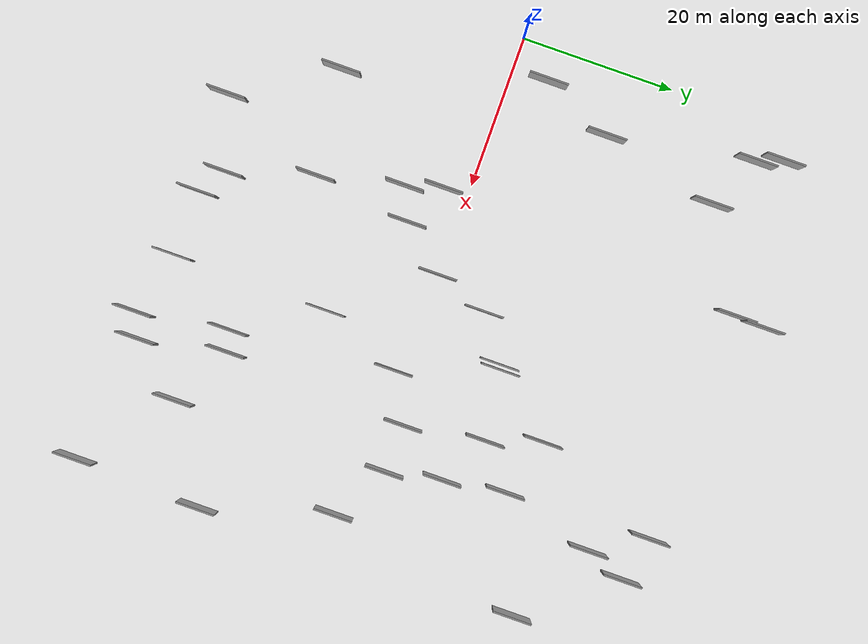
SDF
<sdf version="1.6">
 <world name="default">
  <scene>
   <sky><clouds><speed>12</speed></clouds></sky>
   <ambient>0.4 0.4 0.4 1</ambient>
   <background>0.7 0.7 0.7 1</background>
   <shadows>1</shadows>
  </scene>
  <gravity>0 0 -9.8066</gravity>
  <magnetic_field>6e-06 2.3e-05 -4.2e-05</magnetic_field>
  <physics default="0" name="default_physics" type="ode">
   <ode>
    <solver>
     <type>quick</type>
     <iters>10</iters>
     <sor>1.0</sor>
     <use_dynamic_moi_rescaling>0</use_dynamic_moi_rescaling>
    </solver>
    <constraints>
     <cfm>0</cfm>
     <erp>0.2</erp>
     <contact_max_correcting_vel>100</contact_max_correcting_vel>
     <contact_surface_layer>0.001</contact_surface_layer>
    </constraints>
   </ode>
   <max_step_size>0.004</max_step_size>
   <real_time_factor>1</real_time_factor>
   <real_time_update_rate>250</real_time_update_rate>
  </physics>
  <light name="sun" type="directional">
   <pose>0 0 10 0 0 0</pose>
   <diffuse>0.8 0.8 0.8 1</diffuse>
   <specular>0.2 0.2 0.2 1</specular>
   <attenuation>
    <range>1000</range>
    <constant>0.9</constant>
    <linear>0.01</linear>
    <quadratic>0.001</quadratic>
   </attenuation>
   <direction>-0.5 0.1 -0.9</direction>
  </light>
  <model name="grey_wall_1">
   <static>1</static>
   <pose>57.5017 1.6066 5.0 0.000000 0.000000 1.570796</pose>
   <link name="link">
    <pose>0 0 2.50 0 0 0</pose>
    <collision name="collision"><geometry><box><size>5.00 0.2 5.00</size></box></geometry></collision>
    <visual name="visual">
     <cast_shadows>0</cast_shadows>
     <geometry><box><size>5.00 0.2 5.00</size></box></geometry>
     <material>
      <script>
       <uri>model://grey_wall/materials/scripts</uri>
       <uri>model://grey_wall/materials/textures</uri>
       <name>vrc/grey_wall</name>
      </script>
     </material>
    </visual>
   </link>
  </model>
  <model name="grey_wall_2">
   <static>1</static>
   <pose>56.0781 8.6717 5.0 0.000000 0.000000 1.570796</pose>
   <link name="link">
    <pose>0 0 2.50 0 0 0</pose>
    <collision name="collision"><geometry><box><size>5.00 0.2 5.00</size></box></geometry></collision>
    <visual name="visual">
     <cast_shadows>0</cast_shadows>
     <geometry><box><size>5.00 0.2 5.00</size></box></geometry>
     <material>
      <script>
       <uri>model://grey_wall/materials/scripts</uri>
       <uri>model://grey_wall/materials/textures</uri>
       <name>vrc/grey_wall</name>
      </script>
     </material>
    </visual>
   </link>
  </model>
  <model name="grey_wall_3">
   <static>1</static>
   <pose>54.3988 35.3021 5.0 0.000000 0.000000 1.570796</pose>
   <link name="link">
    <pose>0 0 2.50 0 0 0</pose>
    <collision name="collision"><geometry><box><size>5.00 0.2 5.00</size></box></geometry></collision>
    <visual name="visual">
     <cast_shadows>0</cast_shadows>
     <geometry><box><size>5.00 0.2 5.00</size></box></geometry>
     <material>
      <script>
       <uri>model://grey_wall/materials/scripts</uri>
       <uri>model://grey_wall/materials/textures</uri>
       <name>vrc/grey_wall</name>
      </script>
     </material>
    </visual>
   </link>
  </model>
  <model name="grey_wall_4">
   <static>1</static>
   <pose>47.4897 18.8995 5.0 0.000000 0.000000 1.570796</pose>
   <link name="link">
    <pose>0 0 2.50 0 0 0</pose>
    <collision name="collision"><geometry><box><size>5.00 0.2 5.00</size></box></geometry></collision>
    <visual name="visual">
     <cast_shadows>0</cast_shadows>
     <geometry><box><size>5.00 0.2 5.00</size></box></geometry>
     <material>
      <script>
       <uri>model://grey_wall/materials/scripts</uri>
       <uri>model://grey_wall/materials/textures</uri>
       <name>vrc/grey_wall</name>
      </script>
     </material>
    </visual>
   </link>
  </model>
  <model name="grey_wall_5">
   <static>1</static>
   <pose>19.8289 -32.2792 5.0 0.000000 0.000000 1.570796</pose>
   <link name="link">
    <pose>0 0 2.50 0 0 0</pose>
    <collision name="collision"><geometry><box><size>5.00 0.2 5.00</size></box></geometry></collision>
    <visual name="visual">
     <cast_shadows>0</cast_shadows>
     <geometry><box><size>5.00 0.2 5.00</size></box></geometry>
     <material>
      <script>
       <uri>model://grey_wall/materials/scripts</uri>
       <uri>model://grey_wall/materials/textures</uri>
       <name>vrc/grey_wall</name>
      </script>
     </material>
    </visual>
   </link>
  </model>
  <model name="grey_wall_6">
   <static>1</static>
   <pose>54.9334 16.5593 5.0 0.000000 0.000000 1.570796</pose>
   <link name="link">
    <pose>0 0 2.50 0 0 0</pose>
    <collision name="collision"><geometry><box><size>5.00 0.2 5.00</size></box></geometry></collision>
    <visual name="visual">
     <cast_shadows>0</cast_shadows>
     <geometry><box><size>5.00 0.2 5.00</size></box></geometry>
     <material>
      <script>
       <uri>model://grey_wall/materials/scripts</uri>
       <uri>model://grey_wall/materials/textures</uri>
       <name>vrc/grey_wall</name>
      </script>
     </material>
    </visual>
   </link>
  </model>
  <model name="grey_wall_7">
   <static>1</static>
   <pose>50.0308 -21.8087 5.0 0.000000 0.000000 1.570796</pose>
   <link name="link">
    <pose>0 0 2.50 0 0 0</pose>
    <collision name="collision"><geometry><box><size>5.00 0.2 5.00</size></box></geometry></collision>
    <visual name="visual">
     <cast_shadows>0</cast_shadows>
     <geometry><box><size>5.00 0.2 5.00</size></box></geometry>
     <material>
      <script>
       <uri>model://grey_wall/materials/scripts</uri>
       <uri>model://grey_wall/materials/textures</uri>
       <name>vrc/grey_wall</name>
      </script>
     </material>
    </visual>
   </link>
  </model>
  <model name="grey_wall_8">
   <static>1</static>
   <pose>64.5347 -2.5638 5.0 0.000000 0.000000 1.570796</pose>
   <link name="link">
    <pose>0 0 2.50 0 0 0</pose>
    <collision name="collision"><geometry><box><size>5.00 0.2 5.00</size></box></geometry></collision>
    <visual name="visual">
     <cast_shadows>0</cast_shadows>
     <geometry><box><size>5.00 0.2 5.00</size></box></geometry>
     <material>
      <script>
       <uri>model://grey_wall/materials/scripts</uri>
       <uri>model://grey_wall/materials/textures</uri>
       <name>vrc/grey_wall</name>
      </script>
     </material>
    </visual>
   </link>
  </model>
  <model name="grey_wall_9">
   <static>1</static>
   <pose>40.8226 10.9444 5.0 0.000000 0.000000 1.570796</pose>
   <link name="link">
    <pose>0 0 2.50 0 0 0</pose>
    <collision name="collision"><geometry><box><size>5.00 0.2 5.00</size></box></geometry></collision>
    <visual name="visual">
     <cast_shadows>0</cast_shadows>
     <geometry><box><size>5.00 0.2 5.00</size></box></geometry>
     <material>
      <script>
       <uri>model://grey_wall/materials/scripts</uri>
       <uri>model://grey_wall/materials/textures</uri>
       <name>vrc/grey_wall</name>
      </script>
     </material>
    </visual>
   </link>
  </model>
  <model name="grey_wall_10">
   <static>1</static>
   <pose>49.0571 -34.2443 5.0 0.000000 0.000000 1.570796</pose>
   <link name="link">
    <pose>0 0 2.50 0 0 0</pose>
    <collision name="collision"><geometry><box><size>5.00 0.2 5.00</size></box></geometry></collision>
    <visual name="visual">
     <cast_shadows>0</cast_shadows>
     <geometry><box><size>5.00 0.2 5.00</size></box></geometry>
     <material>
      <script>
       <uri>model://grey_wall/materials/scripts</uri>
       <uri>model://grey_wall/materials/textures</uri>
       <name>vrc/grey_wall</name>
      </script>
     </material>
    </visual>
   </link>
  </model>
  <model name="grey_wall_11">
   <static>1</static>
   <pose>68.6575 -35.0618 5.0 0.000000 0.000000 1.570796</pose>
   <link name="link">
    <pose>0 0 2.50 0 0 0</pose>
    <collision name="collision"><geometry><box><size>5.00 0.2 5.00</size></box></geometry></collision>
    <visual name="visual">
     <cast_shadows>0</cast_shadows>
     <geometry><box><size>5.00 0.2 5.00</size></box></geometry>
     <material>
      <script>
       <uri>model://grey_wall/materials/scripts</uri>
       <uri>model://grey_wall/materials/textures</uri>
       <name>vrc/grey_wall</name>
      </script>
     </material>
    </visual>
   </link>
  </model>
  <model name="grey_wall_12">
   <static>1</static>
   <pose>21.8648 -3.1618 5.0 0.000000 0.000000 1.570796</pose>
   <link name="link">
    <pose>0 0 2.50 0 0 0</pose>
    <collision name="collision"><geometry><box><size>5.00 0.2 5.00</size></box></geometry></collision>
    <visual name="visual">
     <cast_shadows>0</cast_shadows>
     <geometry><box><size>5.00 0.2 5.00</size></box></geometry>
     <material>
      <script>
       <uri>model://grey_wall/materials/scripts</uri>
       <uri>model://grey_wall/materials/textures</uri>
       <name>vrc/grey_wall</name>
      </script>
     </material>
    </visual>
   </link>
  </model>
  <model name="grey_wall_13">
   <static>1</static>
   <pose>57.7972 -25.9357 5.0 0.000000 0.000000 1.570796</pose>
   <link name="link">
    <pose>0 0 2.50 0 0 0</pose>
    <collision name="collision"><geometry><box><size>5.00 0.2 5.00</size></box></geometry></collision>
    <visual name="visual">
     <cast_shadows>0</cast_shadows>
     <geometry><box><size>5.00 0.2 5.00</size></box></geometry>
     <material>
      <script>
       <uri>model://grey_wall/materials/scripts</uri>
       <uri>model://grey_wall/materials/textures</uri>
       <name>vrc/grey_wall</name>
      </script>
     </material>
    </visual>
   </link>
  </model>
  <model name="grey_wall_14">
   <static>1</static>
   <pose>4.7463 35.4220 5.0 0.000000 0.000000 1.570796</pose>
   <link name="link">
    <pose>0 0 2.50 0 0 0</pose>
    <collision name="collision"><geometry><box><size>5.00 0.2 5.00</size></box></geometry></collision>
    <visual name="visual">
     <cast_shadows>0</cast_shadows>
     <geometry><box><size>5.00 0.2 5.00</size></box></geometry>
     <material>
      <script>
       <uri>model://grey_wall/materials/scripts</uri>
       <uri>model://grey_wall/materials/textures</uri>
       <name>vrc/grey_wall</name>
      </script>
     </material>
    </visual>
   </link>
  </model>
  <model name="grey_wall_15">
   <static>1</static>
   <pose>29.0141 -29.4306 5.0 0.000000 0.000000 1.570796</pose>
   <link name="link">
    <pose>0 0 2.50 0 0 0</pose>
    <collision name="collision"><geometry><box><size>5.00 0.2 5.00</size></box></geometry></collision>
    <visual name="visual">
     <cast_shadows>0</cast_shadows>
     <geometry><box><size>5.00 0.2 5.00</size></box></geometry>
     <material>
      <script>
       <uri>model://grey_wall/materials/scripts</uri>
       <uri>model://grey_wall/materials/textures</uri>
       <name>vrc/grey_wall</name>
      </script>
     </material>
    </visual>
   </link>
  </model>
  <model name="grey_wall_16">
   <static>1</static>
   <pose>58.2957 28.6387 5.0 0.000000 0.000000 1.570796</pose>
   <link name="link">
    <pose>0 0 2.50 0 0 0</pose>
    <collision name="collision"><geometry><box><size>5.00 0.2 5.00</size></box></geometry></collision>
    <visual name="visual">
     <cast_shadows>0</cast_shadows>
     <geometry><box><size>5.00 0.2 5.00</size></box></geometry>
     <material>
      <script>
       <uri>model://grey_wall/materials/scripts</uri>
       <uri>model://grey_wall/materials/textures</uri>
       <name>vrc/grey_wall</name>
      </script>
     </material>
    </visual>
   </link>
  </model>
  <model name="grey_wall_17">
   <static>1</static>
   <pose>49.7387 12.1019 5.0 0.000000 0.000000 1.570796</pose>
   <link name="link">
    <pose>0 0 2.50 0 0 0</pose>
    <collision name="collision"><geometry><box><size>5.00 0.2 5.00</size></box></geometry></collision>
    <visual name="visual">
     <cast_shadows>0</cast_shadows>
     <geometry><box><size>5.00 0.2 5.00</size></box></geometry>
     <material>
      <script>
       <uri>model://grey_wall/materials/scripts</uri>
       <uri>model://grey_wall/materials/textures</uri>
       <name>vrc/grey_wall</name>
      </script>
     </material>
    </visual>
   </link>
  </model>
  <model name="grey_wall_18">
   <static>1</static>
   <pose>32.2640 -0.2797 5.0 0.000000 0.000000 1.570796</pose>
   <link name="link">
    <pose>0 0 2.50 0 0 0</pose>
    <collision name="collision"><geometry><box><size>5.00 0.2 5.00</size></box></geometry></collision>
    <visual name="visual">
     <cast_shadows>0</cast_shadows>
     <geometry><box><size>5.00 0.2 5.00</size></box></geometry>
     <material>
      <script>
       <uri>model://grey_wall/materials/scripts</uri>
       <uri>model://grey_wall/materials/textures</uri>
       <name>vrc/grey_wall</name>
      </script>
     </material>
    </visual>
   </link>
  </model>
  <model name="grey_wall_19">
   <static>1</static>
   <pose>34.6848 6.6577 5.0 0.000000 0.000000 1.570796</pose>
   <link name="link">
    <pose>0 0 2.50 0 0 0</pose>
    <collision name="collision"><geometry><box><size>5.00 0.2 5.00</size></box></geometry></collision>
    <visual name="visual">
     <cast_shadows>0</cast_shadows>
     <geometry><box><size>5.00 0.2 5.00</size></box></geometry>
     <material>
      <script>
       <uri>model://grey_wall/materials/scripts</uri>
       <uri>model://grey_wall/materials/textures</uri>
       <name>vrc/grey_wall</name>
      </script>
     </material>
    </visual>
   </link>
  </model>
  <model name="grey_wall_20">
   <static>1</static>
   <pose>51.3331 1.8923 5.0 0.000000 0.000000 1.570796</pose>
   <link name="link">
    <pose>0 0 2.50 0 0 0</pose>
    <collision name="collision"><geometry><box><size>5.00 0.2 5.00</size></box></geometry></collision>
    <visual name="visual">
     <cast_shadows>0</cast_shadows>
     <geometry><box><size>5.00 0.2 5.00</size></box></geometry>
     <material>
      <script>
       <uri>model://grey_wall/materials/scripts</uri>
       <uri>model://grey_wall/materials/textures</uri>
       <name>vrc/grey_wall</name>
      </script>
     </material>
    </visual>
   </link>
  </model>
  <model name="grey_wall_21">
   <static>1</static>
   <pose>23.2405 -7.7976 5.0 0.000000 0.000000 1.570796</pose>
   <link name="link">
    <pose>0 0 2.50 0 0 0</pose>
    <collision name="collision"><geometry><box><size>5.00 0.2 5.00</size></box></geometry></collision>
    <visual name="visual">
     <cast_shadows>0</cast_shadows>
     <geometry><box><size>5.00 0.2 5.00</size></box></geometry>
     <material>
      <script>
       <uri>model://grey_wall/materials/scripts</uri>
       <uri>model://grey_wall/materials/textures</uri>
       <name>vrc/grey_wall</name>
      </script>
     </material>
    </visual>
   </link>
  </model>
  <model name="grey_wall_22">
   <static>1</static>
   <pose>25.7096 -18.5956 5.0 0.000000 0.000000 1.570796</pose>
   <link name="link">
    <pose>0 0 2.50 0 0 0</pose>
    <collision name="collision"><geometry><box><size>5.00 0.2 5.00</size></box></geometry></collision>
    <visual name="visual">
     <cast_shadows>0</cast_shadows>
     <geometry><box><size>5.00 0.2 5.00</size></box></geometry>
     <material>
      <script>
       <uri>model://grey_wall/materials/scripts</uri>
       <uri>model://grey_wall/materials/textures</uri>
       <name>vrc/grey_wall</name>
      </script>
     </material>
    </visual>
   </link>
  </model>
  <model name="grey_wall_23">
   <static>1</static>
   <pose>32.4021 -31.7320 5.0 0.000000 0.000000 1.570796</pose>
   <link name="link">
    <pose>0 0 2.50 0 0 0</pose>
    <collision name="collision"><geometry><box><size>5.00 0.2 5.00</size></box></geometry></collision>
    <visual name="visual">
     <cast_shadows>0</cast_shadows>
     <geometry><box><size>5.00 0.2 5.00</size></box></geometry>
     <material>
      <script>
       <uri>model://grey_wall/materials/scripts</uri>
       <uri>model://grey_wall/materials/textures</uri>
       <name>vrc/grey_wall</name>
      </script>
     </material>
    </visual>
   </link>
  </model>
  <model name="grey_wall_24">
   <static>1</static>
   <pose>12.6926 28.8400 5.0 0.000000 0.000000 1.570796</pose>
   <link name="link">
    <pose>0 0 2.50 0 0 0</pose>
    <collision name="collision"><geometry><box><size>5.00 0.2 5.00</size></box></geometry></collision>
    <visual name="visual">
     <cast_shadows>0</cast_shadows>
     <geometry><box><size>5.00 0.2 5.00</size></box></geometry>
     <material>
      <script>
       <uri>model://grey_wall/materials/scripts</uri>
       <uri>model://grey_wall/materials/textures</uri>
       <name>vrc/grey_wall</name>
      </script>
     </material>
    </visual>
   </link>
  </model>
  <model name="grey_wall_25">
   <static>1</static>
   <pose>40.8374 -31.9557 5.0 0.000000 0.000000 1.570796</pose>
   <link name="link">
    <pose>0 0 2.50 0 0 0</pose>
    <collision name="collision"><geometry><box><size>5.00 0.2 5.00</size></box></geometry></collision>
    <visual name="visual">
     <cast_shadows>0</cast_shadows>
     <geometry><box><size>5.00 0.2 5.00</size></box></geometry>
     <material>
      <script>
       <uri>model://grey_wall/materials/scripts</uri>
       <uri>model://grey_wall/materials/textures</uri>
       <name>vrc/grey_wall</name>
      </script>
     </material>
    </visual>
   </link>
  </model>
  <model name="grey_wall_26">
   <static>1</static>
   <pose>45.2582 -1.4770 5.0 0.000000 0.000000 1.570796</pose>
   <link name="link">
    <pose>0 0 2.50 0 0 0</pose>
    <collision name="collision"><geometry><box><size>5.00 0.2 5.00</size></box></geometry></collision>
    <visual name="visual">
     <cast_shadows>0</cast_shadows>
     <geometry><box><size>5.00 0.2 5.00</size></box></geometry>
     <material>
      <script>
       <uri>model://grey_wall/materials/scripts</uri>
       <uri>model://grey_wall/materials/textures</uri>
       <name>vrc/grey_wall</name>
      </script>
     </material>
    </visual>
   </link>
  </model>
  <model name="grey_wall_27">
   <static>1</static>
   <pose>60.2862 33.7061 5.0 0.000000 0.000000 1.570796</pose>
   <link name="link">
    <pose>0 0 2.50 0 0 0</pose>
    <collision name="collision"><geometry><box><size>5.00 0.2 5.00</size></box></geometry></collision>
    <visual name="visual">
     <cast_shadows>0</cast_shadows>
     <geometry><box><size>5.00 0.2 5.00</size></box></geometry>
     <material>
      <script>
       <uri>model://grey_wall/materials/scripts</uri>
       <uri>model://grey_wall/materials/textures</uri>
       <name>vrc/grey_wall</name>
      </script>
     </material>
    </visual>
   </link>
  </model>
  <model name="grey_wall_28">
   <static>1</static>
   <pose>24.8145 36.2063 5.0 0.000000 0.000000 1.570796</pose>
   <link name="link">
    <pose>0 0 2.50 0 0 0</pose>
    <collision name="collision"><geometry><box><size>5.00 0.2 5.00</size></box></geometry></collision>
    <visual name="visual">
     <cast_shadows>0</cast_shadows>
     <geometry><box><size>5.00 0.2 5.00</size></box></geometry>
     <material>
      <script>
       <uri>model://grey_wall/materials/scripts</uri>
       <uri>model://grey_wall/materials/textures</uri>
       <name>vrc/grey_wall</name>
      </script>
     </material>
    </visual>
   </link>
  </model>
  <model name="grey_wall_29">
   <static>1</static>
   <pose>52.1399 -32.8068 5.0 0.000000 0.000000 1.570796</pose>
   <link name="link">
    <pose>0 0 2.50 0 0 0</pose>
    <collision name="collision"><geometry><box><size>5.00 0.2 5.00</size></box></geometry></collision>
    <visual name="visual">
     <cast_shadows>0</cast_shadows>
     <geometry><box><size>5.00 0.2 5.00</size></box></geometry>
     <material>
      <script>
       <uri>model://grey_wall/materials/scripts</uri>
       <uri>model://grey_wall/materials/textures</uri>
       <name>vrc/grey_wall</name>
      </script>
     </material>
    </visual>
   </link>
  </model>
  <model name="grey_wall_30">
   <static>1</static>
   <pose>27.3456 -6.0226 5.0 0.000000 0.000000 1.570796</pose>
   <link name="link">
    <pose>0 0 2.50 0 0 0</pose>
    <collision name="collision"><geometry><box><size>5.00 0.2 5.00</size></box></geometry></collision>
    <visual name="visual">
     <cast_shadows>0</cast_shadows>
     <geometry><box><size>5.00 0.2 5.00</size></box></geometry>
     <material>
      <script>
       <uri>model://grey_wall/materials/scripts</uri>
       <uri>model://grey_wall/materials/textures</uri>
       <name>vrc/grey_wall</name>
      </script>
     </material>
    </visual>
   </link>
  </model>
  <model name="grey_wall_31">
   <static>1</static>
   <pose>69.0464 22.4120 5.0 0.000000 0.000000 1.570796</pose>
   <link name="link">
    <pose>0 0 2.50 0 0 0</pose>
    <collision name="collision"><geometry><box><size>5.00 0.2 5.00</size></box></geometry></collision>
    <visual name="visual">
     <cast_shadows>0</cast_shadows>
     <geometry><box><size>5.00 0.2 5.00</size></box></geometry>
     <material>
      <script>
       <uri>model://grey_wall/materials/scripts</uri>
       <uri>model://grey_wall/materials/textures</uri>
       <name>vrc/grey_wall</name>
      </script>
     </material>
    </visual>
   </link>
  </model>
  <model name="grey_wall_32">
   <static>1</static>
   <pose>40.2112 10.6199 5.0 0.000000 0.000000 1.570796</pose>
   <link name="link">
    <pose>0 0 2.50 0 0 0</pose>
    <collision name="collision"><geometry><box><size>5.00 0.2 5.00</size></box></geometry></collision>
    <visual name="visual">
     <cast_shadows>0</cast_shadows>
     <geometry><box><size>5.00 0.2 5.00</size></box></geometry>
     <material>
      <script>
       <uri>model://grey_wall/materials/scripts</uri>
       <uri>model://grey_wall/materials/textures</uri>
       <name>vrc/grey_wall</name>
      </script>
     </material>
    </visual>
   </link>
  </model>
  <model name="grey_wall_33">
   <static>1</static>
   <pose>9.0679 13.6717 5.0 0.000000 0.000000 1.570796</pose>
   <link name="link">
    <pose>0 0 2.50 0 0 0</pose>
    <collision name="collision"><geometry><box><size>5.00 0.2 5.00</size></box></geometry></collision>
    <visual name="visual">
     <cast_shadows>0</cast_shadows>
     <geometry><box><size>5.00 0.2 5.00</size></box></geometry>
     <material>
      <script>
       <uri>model://grey_wall/materials/scripts</uri>
       <uri>model://grey_wall/materials/textures</uri>
       <name>vrc/grey_wall</name>
      </script>
     </material>
    </visual>
   </link>
  </model>
  <model name="grey_wall_34">
   <static>1</static>
   <pose>5.0622 4.6306 5.0 0.000000 0.000000 1.570796</pose>
   <link name="link">
    <pose>0 0 2.50 0 0 0</pose>
    <collision name="collision"><geometry><box><size>5.00 0.2 5.00</size></box></geometry></collision>
    <visual name="visual">
     <cast_shadows>0</cast_shadows>
     <geometry><box><size>5.00 0.2 5.00</size></box></geometry>
     <material>
      <script>
       <uri>model://grey_wall/materials/scripts</uri>
       <uri>model://grey_wall/materials/textures</uri>
       <name>vrc/grey_wall</name>
      </script>
     </material>
    </visual>
   </link>
  </model>
  <model name="grey_wall_35">
   <static>1</static>
   <pose>69.3849 -18.7714 5.0 0.000000 0.000000 1.570796</pose>
   <link name="link">
    <pose>0 0 2.50 0 0 0</pose>
    <collision name="collision"><geometry><box><size>5.00 0.2 5.00</size></box></geometry></collision>
    <visual name="visual">
     <cast_shadows>0</cast_shadows>
     <geometry><box><size>5.00 0.2 5.00</size></box></geometry>
     <material>
      <script>
       <uri>model://grey_wall/materials/scripts</uri>
       <uri>model://grey_wall/materials/textures</uri>
       <name>vrc/grey_wall</name>
      </script>
     </material>
    </visual>
   </link>
  </model>
  <model name="grey_wall_36">
   <static>1</static>
   <pose>25.0225 39.8740 5.0 0.000000 0.000000 1.570796</pose>
   <link name="link">
    <pose>0 0 2.50 0 0 0</pose>
    <collision name="collision"><geometry><box><size>5.00 0.2 5.00</size></box></geometry></collision>
    <visual name="visual">
     <cast_shadows>0</cast_shadows>
     <geometry><box><size>5.00 0.2 5.00</size></box></geometry>
     <material>
      <script>
       <uri>model://grey_wall/materials/scripts</uri>
       <uri>model://grey_wall/materials/textures</uri>
       <name>vrc/grey_wall</name>
      </script>
     </material>
    </visual>
   </link>
  </model>
  <model name="grey_wall_37">
   <static>1</static>
   <pose>47.3416 -22.4517 5.0 0.000000 0.000000 1.570796</pose>
   <link name="link">
    <pose>0 0 2.50 0 0 0</pose>
    <collision name="collision"><geometry><box><size>5.00 0.2 5.00</size></box></geometry></collision>
    <visual name="visual">
     <cast_shadows>0</cast_shadows>
     <geometry><box><size>5.00 0.2 5.00</size></box></geometry>
     <material>
      <script>
       <uri>model://grey_wall/materials/scripts</uri>
       <uri>model://grey_wall/materials/textures</uri>
       <name>vrc/grey_wall</name>
      </script>
     </material>
    </visual>
   </link>
  </model>
  <model name="grey_wall_38">
   <static>1</static>
   <pose>41.0887 -11.8458 5.0 0.000000 0.000000 1.570796</pose>
   <link name="link">
    <pose>0 0 2.50 0 0 0</pose>
    <collision name="collision"><geometry><box><size>5.00 0.2 5.00</size></box></geometry></collision>
    <visual name="visual">
     <cast_shadows>0</cast_shadows>
     <geometry><box><size>5.00 0.2 5.00</size></box></geometry>
     <material>
      <script>
       <uri>model://grey_wall/materials/scripts</uri>
       <uri>model://grey_wall/materials/textures</uri>
       <name>vrc/grey_wall</name>
      </script>
     </material>
    </visual>
   </link>
  </model>
  <model name="grey_wall_39">
   <static>1</static>
   <pose>5.9289 32.2216 5.0 0.000000 0.000000 1.570796</pose>
   <link name="link">
    <pose>0 0 2.50 0 0 0</pose>
    <collision name="collision"><geometry><box><size>5.00 0.2 5.00</size></box></geometry></collision>
    <visual name="visual">
     <cast_shadows>0</cast_shadows>
     <geometry><box><size>5.00 0.2 5.00</size></box></geometry>
     <material>
      <script>
       <uri>model://grey_wall/materials/scripts</uri>
       <uri>model://grey_wall/materials/textures</uri>
       <name>vrc/grey_wall</name>
      </script>
     </material>
    </visual>
   </link>
  </model>
  <model name="grey_wall_40">
   <static>1</static>
   <pose>12.1973 -19.9877 5.0 0.000000 0.000000 1.570796</pose>
   <link name="link">
    <pose>0 0 2.50 0 0 0</pose>
    <collision name="collision"><geometry><box><size>5.00 0.2 5.00</size></box></geometry></collision>
    <visual name="visual">
     <cast_shadows>0</cast_shadows>
     <geometry><box><size>5.00 0.2 5.00</size></box></geometry>
     <material>
      <script>
       <uri>model://grey_wall/materials/scripts</uri>
       <uri>model://grey_wall/materials/textures</uri>
       <name>vrc/grey_wall</name>
      </script>
     </material>
    </visual>
   </link>
  </model>
 </world>
</sdf>
